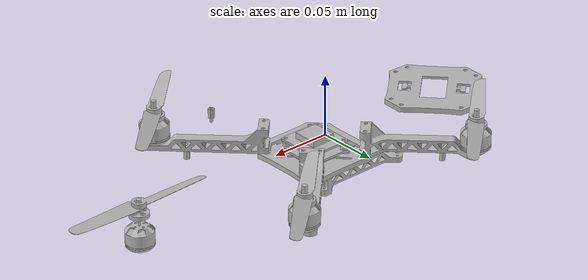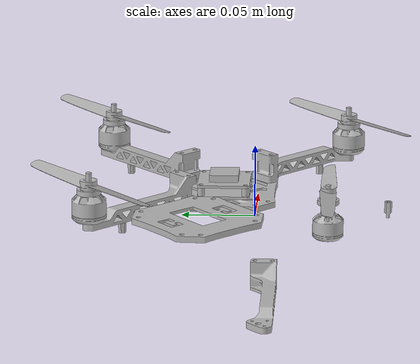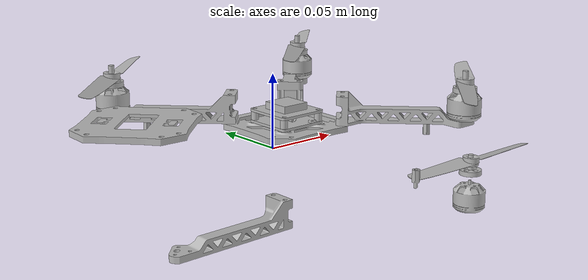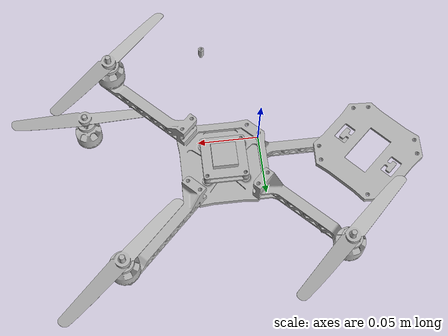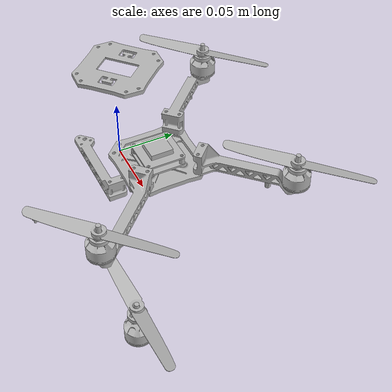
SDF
<sdf version='1.7'>
  <model name='quadcopter'>
    <link name='base_footprint'>
      <inertial>
        <pose>0.028068 0.025892 0.009285 0 -0 0</pose>
        <mass>0.129768</mass>
        <inertia>
          <ixx>0.000418502</ixx>
          <ixy>0.000138815</ixy>
          <ixz>2.50123e-05</ixz>
          <iyy>0.000593277</iyy>
          <iyz>-5.05663e-05</iyz>
          <izz>0.000944776</izz>
        </inertia>
      </inertial>
      <collision name='base_footprint_fixed_joint_lump__base_link_collision'>
        <pose>0.031113 0.022627 0.004 0 -0 0</pose>
        <geometry>
          <mesh>
            <scale>1 1 1</scale>
            <uri>model://drone_description/meshes/base_link.stl</uri>
          </mesh>
        </geometry>
      </collision>
      <collision name='base_footprint_fixed_joint_lump__board_link_collision_1'>
        <pose>0.031113 0.022627 0.0075 0 -0 -0</pose>
        <geometry>
          <mesh>
            <scale>1 1 1</scale>
            <uri>model://drone_description/meshes/Board_link.stl</uri>
          </mesh>
        </geometry>
      </collision>
      <collision name='base_footprint_fixed_joint_lump__spacer_link_collision_2'>
        <pose>0.015863 0.037877 0.00925 0 -0 -0</pose>
        <geometry>
          <mesh>
            <scale>1 1 1</scale>
            <uri>model://drone_description/meshes/Spacer_link.stl</uri>
          </mesh>
        </geometry>
      </collision>
      <collision name='base_footprint_fixed_joint_lump__spacer_link_3_collision_3'>
        <pose>0.046363 0.037877 0.00925 0 -0 -0</pose>
        <geometry>
          <mesh>
            <scale>1 1 1</scale>
            <uri>model://drone_description/meshes/Spacer_link.stl</uri>
          </mesh>
        </geometry>
      </collision>
      <collision name='base_footprint_fixed_joint_lump__spacer_link_1_collision_4'>
        <pose>0.015863 0.007377 0.00925 0 -0 -0</pose>
        <geometry>
          <mesh>
            <scale>1 1 1</scale>
            <uri>model://drone_description/meshes/Spacer_link.stl</uri>
          </mesh>
        </geometry>
      </collision>
      <collision name='base_footprint_fixed_joint_lump__spacer_link_2_collision_5'>
        <pose>0.046363 0.007377 0.00925 0 -0 -0</pose>
        <geometry>
          <mesh>
            <scale>1 1 1</scale>
            <uri>model://drone_description/meshes/Spacer_link.stl</uri>
          </mesh>
        </geometry>
      </collision>
      <collision name='base_footprint_fixed_joint_lump__board_link_1_collision_6'>
        <pose>0.031113 0.022627 0.017 3.14159 0 -3.14159</pose>
        <geometry>
          <mesh>
            <scale>1 1 1</scale>
            <uri>model://drone_description/meshes/Board_link.stl</uri>
          </mesh>
        </geometry>
      </collision>
      <collision name='base_footprint_fixed_joint_lump__imu_link_collision_7'>
        <pose>0.031113 0.022627 0.017 5e-06 0 -0</pose>
        <geometry>
          <mesh>
            <scale>1 1 1</scale>
            <uri>model://drone_description/meshes/imu_link.stl</uri>
          </mesh>
        </geometry>
        <surface>
          <contact>
            <ode/>
          </contact>
          <friction>
            <ode/>
          </friction>
        </surface>
      </collision>
      <collision name='base_footprint_fixed_joint_lump__arm_link_3_collision_8'>
        <pose>0.000707 0.040305 0.008 -0 -0 0.785398</pose>
        <geometry>
          <mesh>
            <scale>1 1 1</scale>
            <uri>model://drone_description/meshes/Arm_link.stl</uri>
          </mesh>
        </geometry>
      </collision>
      <collision name='base_footprint_fixed_joint_lump__motor_link_2_collision_9'>
        <pose>-0.05374 0.10748 0.0125 0 -0 -0.785398</pose>
        <geometry>
          <mesh>
            <scale>1 1 1</scale>
            <uri>model://drone_description/meshes/Motor_link.stl</uri>
          </mesh>
        </geometry>
      </collision>
      <collision name='base_footprint_fixed_joint_lump__pillar_link_collision_10'>
        <pose>-0.039658 0.087035 0.0119 -3.14159 0 2.35619</pose>
        <geometry>
          <mesh>
            <scale>1 1 1</scale>
            <uri>model://drone_description/meshes/Pillar_link.stl</uri>
          </mesh>
        </geometry>
        <surface>
          <contact>
            <ode>
              <kp>100000</kp>
              <kd>10</kd>
              <max_vel>0.1</max_vel>
              <min_depth>0.001</min_depth>
            </ode>
          </contact>
          <friction>
            <ode>
              <mu>0.8</mu>
              <mu2>0.8</mu2>
            </ode>
          </friction>
        </surface>
      </collision>
      <collision name='base_footprint_fixed_joint_lump__arm_link_2_collision_11'>
        <pose>0.04879 0.053033 0.008 0 -0 -0.785402</pose>
        <geometry>
          <mesh>
            <scale>1 1 1</scale>
            <uri>model://drone_description/meshes/Arm_link.stl</uri>
          </mesh>
        </geometry>
      </collision>
      <collision name='base_footprint_fixed_joint_lump__motor_link_collision_12'>
        <pose>0.115966 0.10748 0.0125 0 -0 -0.785402</pose>
        <geometry>
          <mesh>
            <scale>1 1 1</scale>
            <uri>model://drone_description/meshes/Motor_link.stl</uri>
          </mesh>
        </geometry>
      </collision>
      <collision name='base_footprint_fixed_joint_lump__pillar_link_1_collision_13'>
        <pose>0.09552 0.093398 0.0119 -3.14159 0 2.3562</pose>
        <geometry>
          <mesh>
            <scale>1 1 1</scale>
            <uri>model://drone_description/meshes/Pillar_link.stl</uri>
          </mesh>
        </geometry>
        <surface>
          <contact>
            <ode>
              <kp>100000</kp>
              <kd>10</kd>
              <max_vel>0.1</max_vel>
              <min_depth>0.001</min_depth>
            </ode>
          </contact>
          <friction>
            <ode>
              <mu>0.8</mu>
              <mu2>0.8</mu2>
            </ode>
          </friction>
        </surface>
      </collision>
      <collision name='base_footprint_fixed_joint_lump__arm_link_collision_14'>
        <pose>0.004 -0.015 -0.052 -0 -0 1.57081</pose>
        <geometry>
          <mesh>
            <scale>1 1 1</scale>
            <uri>model://drone_description/meshes/Arm_link.stl</uri>
          </mesh>
        </geometry>
      </collision>
      <collision name='base_footprint_fixed_joint_lump__motor_link_1_collision_15'>
        <pose>0.144226 -0.047739 -0.063 0 0 1.61376</pose>
        <geometry>
          <mesh>
            <scale>1 1 1</scale>
            <uri>model://drone_description/meshes/Motor_link.stl</uri>
          </mesh>
        </geometry>
      </collision>
      <collision name='base_footprint_fixed_joint_lump__pillar_link_2_collision_16'>
        <pose>0.037644 -0.09088 -0.0119 1e-06 -2e-06 0</pose>
        <geometry>
          <mesh>
            <scale>1 1 1</scale>
            <uri>model://drone_description/meshes/Pillar_link.stl</uri>
          </mesh>
        </geometry>
        <surface>
          <contact>
            <ode>
              <kp>100000</kp>
              <kd>10</kd>
              <max_vel>0.1</max_vel>
              <min_depth>0.001</min_depth>
            </ode>
          </contact>
          <friction>
            <ode>
              <mu>0.8</mu>
              <mu2>0.8</mu2>
            </ode>
          </friction>
        </surface>
      </collision>
      <collision name='base_footprint_fixed_joint_lump__arm_link_1_collision_17'>
        <pose>0.061518 0.00495 0.008 -0 0 -2.35619</pose>
        <geometry>
          <mesh>
            <scale>1 1 1</scale>
            <uri>model://drone_description/meshes/Arm_link.stl</uri>
          </mesh>
        </geometry>
      </collision>
      <collision name='base_footprint_fixed_joint_lump__motor_link_3_collision_18'>
        <pose>0.115966 -0.062225 0.0125 0 0 -0.785398</pose>
        <geometry>
          <mesh>
            <scale>1 1 1</scale>
            <uri>model://drone_description/meshes/Motor_link.stl</uri>
          </mesh>
        </geometry>
      </collision>
      <collision name='base_footprint_fixed_joint_lump__pillar_link_3_collision_19'>
        <pose>0.101884 -0.04178 0.0119 -3.14159 -0 2.35619</pose>
        <geometry>
          <mesh>
            <scale>1 1 1</scale>
            <uri>model://drone_description/meshes/Pillar_link.stl</uri>
          </mesh>
        </geometry>
        <surface>
          <contact>
            <ode>
              <kp>100000</kp>
              <kd>10</kd>
              <max_vel>0.1</max_vel>
              <min_depth>0.001</min_depth>
            </ode>
          </contact>
          <friction>
            <ode>
              <mu>0.8</mu>
              <mu2>0.8</mu2>
            </ode>
          </friction>
        </surface>
      </collision>
      <collision name='base_footprint_fixed_joint_lump__top_link_collision_20'>
        <pose>-0.081496 0.033552 0.025838 -3.14159 0 -2.39915</pose>
        <geometry>
          <mesh>
            <scale>1 1 1</scale>
            <uri>model://drone_description/meshes/Top_link.stl</uri>
          </mesh>
        </geometry>
      </collision>
      <visual name='base_footprint_fixed_joint_lump__base_link_visual'>
        <pose>0.031113 0.022627 0.004 0 -0 0</pose>
        <geometry>
          <mesh>
            <scale>1 1 1</scale>
            <uri>model://drone_description/meshes/base_link.stl</uri>
          </mesh>
        </geometry>
      </visual>
      <visual name='base_footprint_fixed_joint_lump__board_link_visual_1'>
        <pose>0.031113 0.022627 0.0075 0 -0 -0</pose>
        <geometry>
          <mesh>
            <scale>1 1 1</scale>
            <uri>model://drone_description/meshes/Board_link.stl</uri>
          </mesh>
        </geometry>
      </visual>
      <visual name='base_footprint_fixed_joint_lump__spacer_link_visual_2'>
        <pose>0.015863 0.037877 0.00925 0 -0 -0</pose>
        <geometry>
          <mesh>
            <scale>1 1 1</scale>
            <uri>model://drone_description/meshes/Spacer_link.stl</uri>
          </mesh>
        </geometry>
      </visual>
      <visual name='base_footprint_fixed_joint_lump__spacer_link_3_visual_3'>
        <pose>0.046363 0.037877 0.00925 0 -0 -0</pose>
        <geometry>
          <mesh>
            <scale>1 1 1</scale>
            <uri>model://drone_description/meshes/Spacer_link.stl</uri>
          </mesh>
        </geometry>
      </visual>
      <visual name='base_footprint_fixed_joint_lump__spacer_link_1_visual_4'>
        <pose>0.015863 0.007377 0.00925 0 -0 -0</pose>
        <geometry>
          <mesh>
            <scale>1 1 1</scale>
            <uri>model://drone_description/meshes/Spacer_link.stl</uri>
          </mesh>
        </geometry>
      </visual>
      <visual name='base_footprint_fixed_joint_lump__spacer_link_2_visual_5'>
        <pose>0.046363 0.007377 0.00925 0 -0 -0</pose>
        <geometry>
          <mesh>
            <scale>1 1 1</scale>
            <uri>model://drone_description/meshes/Spacer_link.stl</uri>
          </mesh>
        </geometry>
      </visual>
      <visual name='base_footprint_fixed_joint_lump__board_link_1_visual_6'>
        <pose>0.031113 0.022627 0.017 3.14159 0 -3.14159</pose>
        <geometry>
          <mesh>
            <scale>1 1 1</scale>
            <uri>model://drone_description/meshes/Board_link.stl</uri>
          </mesh>
        </geometry>
      </visual>
      <visual name='base_footprint_fixed_joint_lump__imu_link_visual_7'>
        <pose>0.031113 0.022627 0.017 5e-06 0 -0</pose>
        <geometry>
          <mesh>
            <scale>1 1 1</scale>
            <uri>model://drone_description/meshes/imu_link.stl</uri>
          </mesh>
        </geometry>
      </visual>
      <visual name='base_footprint_fixed_joint_lump__arm_link_3_visual_8'>
        <pose>0.000707 0.040305 0.008 -0 -0 0.785398</pose>
        <geometry>
          <mesh>
            <scale>1 1 1</scale>
            <uri>model://drone_description/meshes/Arm_link.stl</uri>
          </mesh>
        </geometry>
      </visual>
      <visual name='base_footprint_fixed_joint_lump__motor_link_2_visual_9'>
        <pose>-0.05374 0.10748 0.0125 0 -0 -0.785398</pose>
        <geometry>
          <mesh>
            <scale>1 1 1</scale>
            <uri>model://drone_description/meshes/Motor_link.stl</uri>
          </mesh>
        </geometry>
      </visual>
      <visual name='base_footprint_fixed_joint_lump__pillar_link_visual_10'>
        <pose>-0.039658 0.087035 0.0119 -3.14159 0 2.35619</pose>
        <geometry>
          <mesh>
            <scale>1 1 1</scale>
            <uri>model://drone_description/meshes/Pillar_link.stl</uri>
          </mesh>
        </geometry>
      </visual>
      <visual name='base_footprint_fixed_joint_lump__arm_link_2_visual_11'>
        <pose>0.04879 0.053033 0.008 0 -0 -0.785402</pose>
        <geometry>
          <mesh>
            <scale>1 1 1</scale>
            <uri>model://drone_description/meshes/Arm_link.stl</uri>
          </mesh>
        </geometry>
      </visual>
      <visual name='base_footprint_fixed_joint_lump__motor_link_visual_12'>
        <pose>0.115966 0.10748 0.0125 0 -0 -0.785402</pose>
        <geometry>
          <mesh>
            <scale>1 1 1</scale>
            <uri>model://drone_description/meshes/Motor_link.stl</uri>
          </mesh>
        </geometry>
      </visual>
      <visual name='base_footprint_fixed_joint_lump__pillar_link_1_visual_13'>
        <pose>0.09552 0.093398 0.0119 -3.14159 0 2.3562</pose>
        <geometry>
          <mesh>
            <scale>1 1 1</scale>
            <uri>model://drone_description/meshes/Pillar_link.stl</uri>
          </mesh>
        </geometry>
      </visual>
      <visual name='base_footprint_fixed_joint_lump__arm_link_visual_14'>
        <pose>0.004 -0.015 -0.052 -0 -0 1.57081</pose>
        <geometry>
          <mesh>
            <scale>1 1 1</scale>
            <uri>model://drone_description/meshes/Arm_link.stl</uri>
          </mesh>
        </geometry>
      </visual>
      <visual name='base_footprint_fixed_joint_lump__motor_link_1_visual_15'>
        <pose>0.144226 -0.047739 -0.063 0 0 1.61376</pose>
        <geometry>
          <mesh>
            <scale>1 1 1</scale>
            <uri>model://drone_description/meshes/Motor_link.stl</uri>
          </mesh>
        </geometry>
      </visual>
      <visual name='base_footprint_fixed_joint_lump__pillar_link_2_visual_16'>
        <pose>0.037644 -0.09088 -0.0119 1e-06 -2e-06 0</pose>
        <geometry>
          <mesh>
            <scale>1 1 1</scale>
            <uri>model://drone_description/meshes/Pillar_link.stl</uri>
          </mesh>
        </geometry>
      </visual>
      <visual name='base_footprint_fixed_joint_lump__arm_link_1_visual_17'>
        <pose>0.061518 0.00495 0.008 -0 0 -2.35619</pose>
        <geometry>
          <mesh>
            <scale>1 1 1</scale>
            <uri>model://drone_description/meshes/Arm_link.stl</uri>
          </mesh>
        </geometry>
      </visual>
      <visual name='base_footprint_fixed_joint_lump__motor_link_3_visual_18'>
        <pose>0.115966 -0.062225 0.0125 0 0 -0.785398</pose>
        <geometry>
          <mesh>
            <scale>1 1 1</scale>
            <uri>model://drone_description/meshes/Motor_link.stl</uri>
          </mesh>
        </geometry>
      </visual>
      <visual name='base_footprint_fixed_joint_lump__pillar_link_3_visual_19'>
        <pose>0.101884 -0.04178 0.0119 -3.14159 -0 2.35619</pose>
        <geometry>
          <mesh>
            <scale>1 1 1</scale>
            <uri>model://drone_description/meshes/Pillar_link.stl</uri>
          </mesh>
        </geometry>
      </visual>
      <visual name='base_footprint_fixed_joint_lump__top_link_visual_20'>
        <pose>-0.081496 0.033552 0.025838 -3.14159 0 -2.39915</pose>
        <geometry>
          <mesh>
            <scale>1 1 1</scale>
            <uri>model://drone_description/meshes/Top_link.stl</uri>
          </mesh>
        </geometry>
      </visual>
      <sensor name='imu' type='imu'>
        <always_on>1</always_on>
        <update_rate>100</update_rate>
        <topic>imu</topic>
        <imu>
          <angular_velocity>
            <x>
              <noise type='gaussian'>
                <mean>0</mean>
                <stddev>0.0002</stddev>
              </noise>
            </x>
            <y>
              <noise type='gaussian'>
                <mean>0</mean>
                <stddev>0.0002</stddev>
              </noise>
            </y>
            <z>
              <noise type='gaussian'>
                <mean>0</mean>
                <stddev>0.0002</stddev>
              </noise>
            </z>
          </angular_velocity>
          <linear_acceleration>
            <x>
              <noise type='gaussian'>
                <mean>0</mean>
                <stddev>0.017</stddev>
              </noise>
            </x>
            <y>
              <noise type='gaussian'>
                <mean>0</mean>
                <stddev>0.017</stddev>
              </noise>
            </y>
            <z>
              <noise type='gaussian'>
                <mean>0</mean>
                <stddev>0.017</stddev>
              </noise>
            </z>
          </linear_acceleration>
        </imu>
        <pose>0.031113 0.022627 0.017 5e-06 0 -0</pose>
        <gz_frame_id>imu_link</gz_frame_id>
      </sensor>
    </link>
    <joint name='motor4_spinner4_joint' type='revolute'>
      <pose relative_to='base_footprint'>-0.05374 0.10748 0.031 0 -0 -0.785398</pose>
      <parent>base_footprint</parent>
      <child>spinner_link</child>
      <axis>
        <xyz>0 0 -1</xyz>
        <limit>
          <lower>-1e+16</lower>
          <upper>1e+16</upper>
        </limit>
        <dynamics>
          <spring_reference>0</spring_reference>
          <spring_stiffness>0</spring_stiffness>
        </dynamics>
      </axis>
    </joint>
    <link name='spinner_link'>
      <pose relative_to='motor4_spinner4_joint'>0 0 0 0 -0 0</pose>
      <inertial>
        <pose>0 -0 0.004786 0 -0 0</pose>
        <mass>0.00216855</mass>
        <inertia>
          <ixx>6.34383e-07</ixx>
          <ixy>-2.32556e-08</ixy>
          <ixz>5.4331e-25</ixz>
          <iyy>4.87442e-08</iyy>
          <iyz>8.57064e-24</iyz>
          <izz>6.40329e-07</izz>
        </inertia>
      </inertial>
      <visual name='spinner_link_visual'>
        <pose>0 0 0 0 -0 0</pose>
        <geometry>
          <mesh>
            <scale>1 1 1</scale>
            <uri>model://drone_description/meshes/Spinner_link.stl</uri>
          </mesh>
        </geometry>
      </visual>
      <visual name='spinner_link_fixed_joint_lump__propeller_link_visual_1'>
        <pose>-0 -0 0.0065 0 0 -0</pose>
        <geometry>
          <mesh>
            <scale>1 1 1</scale>
            <uri>model://drone_description/meshes/Propeller_link.stl</uri>
          </mesh>
        </geometry>
      </visual>
    </link>
    <joint name='motor3_spinner3_joint' type='revolute'>
      <pose relative_to='base_footprint'>0.115966 0.10748 0.031 0 -0 -0.785402</pose>
      <parent>base_footprint</parent>
      <child>spinner_link_2</child>
      <axis>
        <xyz>0 0 -1</xyz>
        <limit>
          <lower>-1e+16</lower>
          <upper>1e+16</upper>
        </limit>
        <dynamics>
          <spring_reference>0</spring_reference>
          <spring_stiffness>0</spring_stiffness>
        </dynamics>
      </axis>
    </joint>
    <link name='spinner_link_2'>
      <pose relative_to='motor3_spinner3_joint'>0 0 0 0 -0 0</pose>
      <inertial>
        <pose>0 0 0.004786 0 -0 0</pose>
        <mass>0.00216855</mass>
        <inertia>
          <ixx>6.34383e-07</ixx>
          <ixy>-2.32556e-08</ixy>
          <ixz>5.4331e-25</ixz>
          <iyy>4.87442e-08</iyy>
          <iyz>-4.43974e-23</iyz>
          <izz>6.40329e-07</izz>
        </inertia>
      </inertial>
      <visual name='spinner_link_2_visual'>
        <pose>0 0 0 0 -0 0</pose>
        <geometry>
          <mesh>
            <scale>1 1 1</scale>
            <uri>model://drone_description/meshes/Spinner_link.stl</uri>
          </mesh>
        </geometry>
      </visual>
      <visual name='spinner_link_2_fixed_joint_lump__propeller_link_3_visual_1'>
        <pose>-0 0 0.0065 0 -0 0</pose>
        <geometry>
          <mesh>
            <scale>1 1 1</scale>
            <uri>model://drone_description/meshes/Propeller_link.stl</uri>
          </mesh>
        </geometry>
      </visual>
    </link>
    <joint name='motor1_spinner1_joint' type='revolute'>
      <pose relative_to='base_footprint'>0.144226 -0.047739 -0.0365 0 0 1.61376</pose>
      <parent>base_footprint</parent>
      <child>spinner_link_3</child>
      <axis>
        <xyz>0 0 -1</xyz>
        <limit>
          <lower>-1e+16</lower>
          <upper>1e+16</upper>
        </limit>
        <dynamics>
          <spring_reference>0</spring_reference>
          <spring_stiffness>0</spring_stiffness>
        </dynamics>
      </axis>
    </joint>
    <link name='spinner_link_3'>
      <pose relative_to='motor1_spinner1_joint'>0 0 0 0 -0 0</pose>
      <inertial>
        <pose>-0 -0 0.005381 0 -0 0</pose>
        <mass>0.00320456</mass>
        <inertia>
          <ixx>1.2358e-06</ixx>
          <ixy>-4.65112e-08</ixy>
          <ixz>-5.10307e-24</ixz>
          <iyy>6.45218e-08</iyy>
          <iyz>1.15996e-23</iyz>
          <izz>1.24891e-06</izz>
        </inertia>
      </inertial>
      <visual name='spinner_link_3_visual'>
        <pose>-0 0 0 0 -0 0</pose>
        <geometry>
          <mesh>
            <scale>1 1 1</scale>
            <uri>model://drone_description/meshes/Spinner_link.stl</uri>
          </mesh>
        </geometry>
      </visual>
      <visual name='spinner_link_3_fixed_joint_lump__propeller_link_2_visual_1'>
        <pose>-0 -0 0.01 0 -0 0</pose>
        <geometry>
          <mesh>
            <scale>1 1 1</scale>
            <uri>model://drone_description/meshes/Propeller_link.stl</uri>
          </mesh>
        </geometry>
      </visual>
    </link>
    <joint name='motor2_spinner2_joint' type='revolute'>
      <pose relative_to='base_footprint'>0.115966 -0.062225 0.031 0 0 -0.785398</pose>
      <parent>base_footprint</parent>
      <child>spinner_link_1</child>
      <axis>
        <xyz>0 0 -1</xyz>
        <limit>
          <lower>-1e+16</lower>
          <upper>1e+16</upper>
        </limit>
        <dynamics>
          <spring_reference>0</spring_reference>
          <spring_stiffness>0</spring_stiffness>
        </dynamics>
      </axis>
    </joint>
    <link name='spinner_link_1'>
      <pose relative_to='motor2_spinner2_joint'>0 0 0 0 -0 0</pose>
      <inertial>
        <pose>-0 -0 0.004786 0 -0 0</pose>
        <mass>0.00216855</mass>
        <inertia>
          <ixx>6.34383e-07</ixx>
          <ixy>-2.32556e-08</ixy>
          <ixz>1.37853e-23</ixz>
          <iyy>4.87442e-08</iyy>
          <iyz>8.57064e-24</iyz>
          <izz>6.40329e-07</izz>
        </inertia>
      </inertial>
      <visual name='spinner_link_1_visual'>
        <pose>0 0 0 0 -0 0</pose>
        <geometry>
          <mesh>
            <scale>1 1 1</scale>
            <uri>model://drone_description/meshes/Spinner_link.stl</uri>
          </mesh>
        </geometry>
      </visual>
      <visual name='spinner_link_1_fixed_joint_lump__propeller_link_1_visual_1'>
        <pose>-0 -0 0.0065 -0 0 -0</pose>
        <geometry>
          <mesh>
            <scale>1 1 1</scale>
            <uri>model://drone_description/meshes/Propeller_link.stl</uri>
          </mesh>
        </geometry>
      </visual>
    </link>
    <joint name='motor1_spinner1_joint' type='revolute'>
      <pose relative_to='base_footprint'>0.144226 -0.047739 -0.0365 0 0 1.61376</pose>
      <parent>base_footprint</parent>
      <child>spinner_link_3</child>
      <axis>
        <xyz>0 0 -1</xyz>
        <limit>
          <lower>-1e+16</lower>
          <upper>1e+16</upper>
        </limit>
        <dynamics>
          <spring_reference>0</spring_reference>
          <spring_stiffness>0</spring_stiffness>
        </dynamics>
      </axis>
    </joint>
    <link name='spinner_link_3'>
      <pose relative_to='motor1_spinner1_joint'>0 0 0 0 -0 0</pose>
      <inertial>
        <pose>-0 -0 0.005381 0 -0 0</pose>
        <mass>0.00320456</mass>
        <inertia>
          <ixx>1.2358e-06</ixx>
          <ixy>-4.65112e-08</ixy>
          <ixz>-5.10307e-24</ixz>
          <iyy>6.45218e-08</iyy>
          <iyz>1.15996e-23</iyz>
          <izz>1.24891e-06</izz>
        </inertia>
      </inertial>
      <visual name='spinner_link_3_visual'>
        <pose>-0 0 0 0 -0 0</pose>
        <geometry>
          <mesh>
            <scale>1 1 1</scale>
            <uri>model://drone_description/meshes/Spinner_link.stl</uri>
          </mesh>
        </geometry>
      </visual>
      <visual name='spinner_link_3_fixed_joint_lump__propeller_link_2_visual_1'>
        <pose>-0 -0 0.01 0 -0 0</pose>
        <geometry>
          <mesh>
            <scale>1 1 1</scale>
            <uri>model://drone_description/meshes/Propeller_link.stl</uri>
          </mesh>
        </geometry>
      </visual>
    </link>
    <static>0</static>
    <plugin name='ign_ros2_control::IgnitionROS2ControlPlugin' filename='ign_ros2_control-system'>
      <parameters>/home/unknown/Main_Folder/Github/ROS-2/drone_ws/install/drone_controllers/share/drone_controllers/config/ros2_control_parameters.yaml</parameters>
    </plugin>
    <plugin name='ignition::gazebo::systems::Imu' filename='ignition-gazebo-imu-system'/>
  </model>
</sdf>
